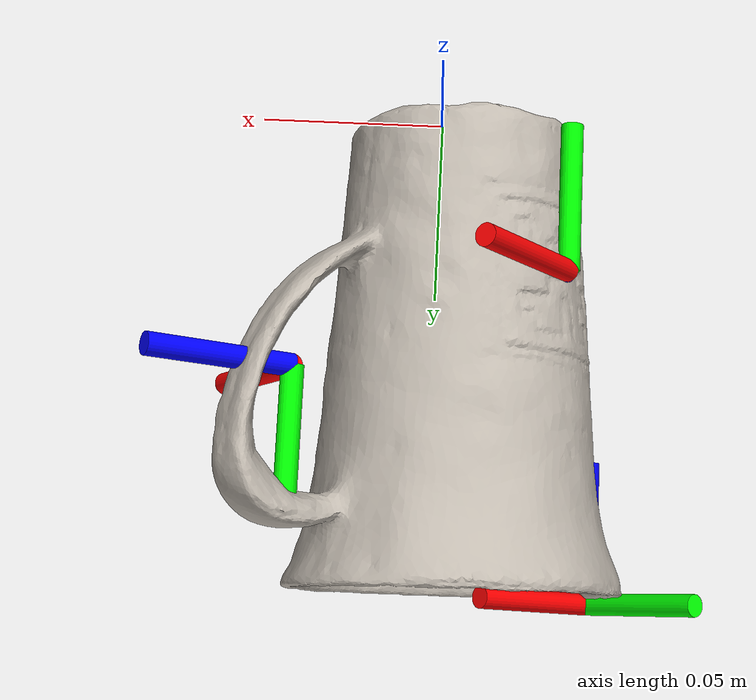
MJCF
<mujoco model="mug_with_tag">
  <compiler autolimits="true" angle="radian"/>
  <default>
    <default class="visual">
      <geom group="2" type="mesh" contype="0" conaffinity="0"/>
    </default>
    <default class="collision">
      <geom group="3" type="mesh"/>
    </default>
  </default>
  <asset>
    <texture type="2d" name="baked_mesh_ac1cdfa2_tex0" file="baked_mesh_ac1cdfa2_tex0.png"/>
    <material name="Texture" texture="baked_mesh_ac1cdfa2_tex0" specular="0.5" shininess="0.5"/>
    <mesh file="mug_with_tag.obj"/>
    <mesh file="mug_with_tag_collision_0.obj"/>
    <mesh file="mug_with_tag_collision_1.obj"/>
    <mesh file="mug_with_tag_collision_2.obj"/>
    <mesh file="mug_with_tag_collision_3.obj"/>
    <mesh file="mug_with_tag_collision_4.obj"/>
    <mesh file="mug_with_tag_collision_5.obj"/>
    <mesh file="mug_with_tag_collision_6.obj"/>
    <mesh file="mug_with_tag_collision_7.obj"/>
    <mesh file="mug_with_tag_collision_8.obj"/>
    <mesh file="mug_with_tag_collision_9.obj"/>
    <mesh file="mug_with_tag_collision_10.obj"/>
    <mesh file="mug_with_tag_collision_11.obj"/>
    <mesh file="mug_with_tag_collision_12.obj"/>
    <mesh file="mug_with_tag_collision_13.obj"/>
    <mesh file="mug_with_tag_collision_14.obj"/>
    <mesh file="mug_with_tag_collision_15.obj"/>
    <mesh file="mug_with_tag_collision_16.obj"/>
    <mesh file="mug_with_tag_collision_17.obj"/>
    <mesh file="mug_with_tag_collision_18.obj"/>
    <mesh file="mug_with_tag_collision_19.obj"/>
    <mesh file="mug_with_tag_collision_20.obj"/>
    <mesh file="mug_with_tag_collision_21.obj"/>
    <mesh file="mug_with_tag_collision_22.obj"/>
    <mesh file="mug_with_tag_collision_23.obj"/>
    <mesh file="mug_with_tag_collision_24.obj"/>
    <mesh file="mug_with_tag_collision_25.obj"/>
    <mesh file="mug_with_tag_collision_26.obj"/>
    <mesh file="mug_with_tag_collision_27.obj"/>
    <mesh file="mug_with_tag_collision_28.obj"/>
    <mesh file="mug_with_tag_collision_29.obj"/>
    <mesh file="mug_with_tag_collision_30.obj"/>
    <mesh file="mug_with_tag_collision_31.obj"/>
    <mesh file="mug_with_tag_collision_32.obj"/>
    <mesh file="mug_with_tag_collision_33.obj"/>
    <mesh file="mug_with_tag_collision_34.obj"/>
    <mesh file="mug_with_tag_collision_35.obj"/>
    <mesh file="mug_with_tag_collision_36.obj"/>
    <mesh file="mug_with_tag_collision_37.obj"/>
    <mesh file="mug_with_tag_collision_38.obj"/>
    <mesh file="mug_with_tag_collision_39.obj"/>
    <mesh file="mug_with_tag_collision_40.obj"/>
    <mesh file="mug_with_tag_collision_41.obj"/>
    <mesh file="mug_with_tag_collision_42.obj"/>
    <mesh file="mug_with_tag_collision_43.obj"/>
    <mesh file="mug_with_tag_collision_44.obj"/>
    <mesh file="mug_with_tag_collision_45.obj"/>
    <mesh file="mug_with_tag_collision_46.obj"/>
    <mesh file="mug_with_tag_collision_47.obj"/>
    <mesh file="mug_with_tag_collision_48.obj"/>
    <mesh file="mug_with_tag_collision_49.obj"/>
    <mesh file="mug_with_tag_collision_50.obj"/>
    <mesh file="mug_with_tag_collision_51.obj"/>
    <mesh file="mug_with_tag_collision_52.obj"/>
    <mesh file="mug_with_tag_collision_53.obj"/>
    <mesh file="mug_with_tag_collision_54.obj"/>
    <mesh file="mug_with_tag_collision_55.obj"/>
    <mesh file="mug_with_tag_collision_56.obj"/>
  </asset>
  <worldbody>
    <body name="mug_with_tag">
      <geom material="Texture" mesh="mug_with_tag" class="visual"/>
      <geom mesh="mug_with_tag_collision_0" rgba="0.4449763013460871 0.6888993739208505 0.842312816770509 1" class="collision"/>
      <geom mesh="mug_with_tag_collision_1" rgba="0.8147493058793346 0.6084578768921085 0.8543772203850549 1" class="collision"/>
      <geom mesh="mug_with_tag_collision_2" rgba="0.1675940875347307 0.7848622610207757 0.9286685800605973 1" class="collision"/>
      <geom mesh="mug_with_tag_collision_3" rgba="0.13423541628254165 0.22923692811376772 0.014591379438338437 1" class="collision"/>
      <geom mesh="mug_with_tag_collision_4" rgba="0.6353344231907213 0.27479794843898186 0.039764699730835074 1" class="collision"/>
      <geom mesh="mug_with_tag_collision_5" rgba="0.10301458540068387 0.2336917539684228 0.31194883868037426 1" class="collision"/>
      <geom mesh="mug_with_tag_collision_6" rgba="0.09387732105586022 0.7640093510755676 0.21579413509359613 1" class="collision"/>
      <geom mesh="mug_with_tag_collision_7" rgba="0.331169343898133 0.9088527297862445 0.2527124053053664 1" class="collision"/>
      <geom mesh="mug_with_tag_collision_8" rgba="0.8230255634089231 0.665419127566091 0.9049474863002644 1" class="collision"/>
      <geom mesh="mug_with_tag_collision_9" rgba="0.628419772055669 0.4135994615820847 0.3486868587758635 1" class="collision"/>
      <geom mesh="mug_with_tag_collision_10" rgba="0.5565690060642147 0.836640399850195 0.193171339429568 1" class="collision"/>
      <geom mesh="mug_with_tag_collision_11" rgba="0.22859979537369546 0.8901449969094043 0.13009918795549746 1" class="collision"/>
      <geom mesh="mug_with_tag_collision_12" rgba="0.08769334109209992 0.28344129774761473 0.6670723495590603 1" class="collision"/>
      <geom mesh="mug_with_tag_collision_13" rgba="0.8999909378754342 0.8504661129087295 0.8470081707796417 1" class="collision"/>
      <geom mesh="mug_with_tag_collision_14" rgba="0.2031211821110699 0.07236391364256822 0.4808890210737693 1" class="collision"/>
      <geom mesh="mug_with_tag_collision_15" rgba="0.18980102203473537 0.6621971360169723 0.7338349112815108 1" class="collision"/>
      <geom mesh="mug_with_tag_collision_16" rgba="0.2762072417847199 0.673016154795776 0.9595671713900087 1" class="collision"/>
      <geom mesh="mug_with_tag_collision_17" rgba="0.0725937479594645 0.7044349191581244 0.43488126670744187 1" class="collision"/>
      <geom mesh="mug_with_tag_collision_18" rgba="0.7616044578130823 0.9721595772204986 0.6996468793821229 1" class="collision"/>
      <geom mesh="mug_with_tag_collision_19" rgba="0.03212361465610569 0.5521414767273927 0.09832834508807486 1" class="collision"/>
      <geom mesh="mug_with_tag_collision_20" rgba="0.21960561999498995 0.3775137588098346 0.9268022852016629 1" class="collision"/>
      <geom mesh="mug_with_tag_collision_21" rgba="0.8757405969109455 0.32699217493786115 0.9017117630965703 1" class="collision"/>
      <geom mesh="mug_with_tag_collision_22" rgba="0.3240007684335865 0.2985474598596862 0.5952000922192967 1" class="collision"/>
      <geom mesh="mug_with_tag_collision_23" rgba="0.18466946702949216 0.9142227726129625 0.8797894232736918 1" class="collision"/>
      <geom mesh="mug_with_tag_collision_24" rgba="0.9090037635306101 0.9910376076892797 0.8359312172711201 1" class="collision"/>
      <geom mesh="mug_with_tag_collision_25" rgba="0.6250657133971474 0.9426848238786777 0.24739077118149133 1" class="collision"/>
      <geom mesh="mug_with_tag_collision_26" rgba="0.20166016383044438 0.7723744865043767 0.5979763326360172 1" class="collision"/>
      <geom mesh="mug_with_tag_collision_27" rgba="0.41916810315789876 0.7560807542806387 0.1154380499312253 1" class="collision"/>
      <geom mesh="mug_with_tag_collision_28" rgba="0.3131421587830313 0.1793811738758182 0.8616611765908508 1" class="collision"/>
      <geom mesh="mug_with_tag_collision_29" rgba="0.8881697449528524 0.6860595757624801 0.840237822994106 1" class="collision"/>
      <geom mesh="mug_with_tag_collision_30" rgba="0.05077399669707605 0.6770448831789695 0.967425548843384 1" class="collision"/>
      <geom mesh="mug_with_tag_collision_31" rgba="0.3398413259183435 0.8340069245568463 0.774367291124885 1" class="collision"/>
      <geom mesh="mug_with_tag_collision_32" rgba="0.447439421148511 0.8011548700448691 0.4301335176437123 1" class="collision"/>
      <geom mesh="mug_with_tag_collision_33" rgba="0.7824856738214869 0.6107769601330952 0.9831616657348266 1" class="collision"/>
      <geom mesh="mug_with_tag_collision_34" rgba="0.1881973948535013 0.6024014329337692 0.9116232983087269 1" class="collision"/>
      <geom mesh="mug_with_tag_collision_35" rgba="0.5373167870392417 0.34561353664237837 0.5511674420397981 1" class="collision"/>
      <geom mesh="mug_with_tag_collision_36" rgba="0.7752665806755705 0.42313091922455204 0.9975858617183 1" class="collision"/>
      <geom mesh="mug_with_tag_collision_37" rgba="0.016263003956870192 0.9164464801428488 0.6629181985426985 1" class="collision"/>
      <geom mesh="mug_with_tag_collision_38" rgba="0.17127375663321875 0.8043413635364332 0.726017780678326 1" class="collision"/>
      <geom mesh="mug_with_tag_collision_39" rgba="0.87881079272273 0.17979930614777928 0.8663326205508906 1" class="collision"/>
      <geom mesh="mug_with_tag_collision_40" rgba="0.6217169125971052 0.37990498719545707 0.5282573022711567 1" class="collision"/>
      <geom mesh="mug_with_tag_collision_41" rgba="0.8885027381985625 0.5090129381739181 0.9180896897256642 1" class="collision"/>
      <geom mesh="mug_with_tag_collision_42" rgba="0.7459976744691059 0.5112348612465708 0.46981444242550807 1" class="collision"/>
      <geom mesh="mug_with_tag_collision_43" rgba="0.42750543715536016 0.503306213179963 0.43517029171643085 1" class="collision"/>
      <geom mesh="mug_with_tag_collision_44" rgba="0.5976055247252084 0.08928793652406697 0.03321205878019762 1" class="collision"/>
      <geom mesh="mug_with_tag_collision_45" rgba="0.1325482609490365 0.9942194100323647 0.0839239177433222 1" class="collision"/>
      <geom mesh="mug_with_tag_collision_46" rgba="0.8500313276583958 0.8563661793692057 0.9840921310554419 1" class="collision"/>
      <geom mesh="mug_with_tag_collision_47" rgba="0.8517253173803918 0.5931724810893567 0.29268415457896046 1" class="collision"/>
      <geom mesh="mug_with_tag_collision_48" rgba="0.970938464753422 0.28231578033818416 0.009456761339682318 1" class="collision"/>
      <geom mesh="mug_with_tag_collision_49" rgba="0.1350709885831065 0.21082901490097572 0.8631583305812426 1" class="collision"/>
      <geom mesh="mug_with_tag_collision_50" rgba="0.017498447900307967 0.3710052466518662 0.18755156335217005 1" class="collision"/>
      <geom mesh="mug_with_tag_collision_51" rgba="0.8197504187636386 0.5995125735709413 0.4463579144961419 1" class="collision"/>
      <geom mesh="mug_with_tag_collision_52" rgba="0.020545121556969193 0.953494550120737 0.5997548252088507 1" class="collision"/>
      <geom mesh="mug_with_tag_collision_53" rgba="0.22288149090093612 0.1683547709395572 0.7046541663805094 1" class="collision"/>
      <geom mesh="mug_with_tag_collision_54" rgba="0.8192539418736148 0.8666459776310642 0.5885012275001282 1" class="collision"/>
      <geom mesh="mug_with_tag_collision_55" rgba="0.9042828772533906 0.5966600291843579 0.37964373984891997 1" class="collision"/>
      <geom mesh="mug_with_tag_collision_56" rgba="0.2778761256195418 0.5828528581754764 0.6943830236183886 1" class="collision"/>
    </body>

    <body name="tag" pos="-0.035 0.045 0.02" euler="0 2.1817 3.1416">
      <!-- geoms for x,y,z axis as cylinder, with RGB color -->
      <geom type="cylinder" size="0.003 0.02" pos="0.02 0 0" rgba="1 0 0 1" material="Texture" euler="0 1.5708 0" class="visual"/>
      <geom type="cylinder" size="0.003 0.02" pos="0 0.02 0" rgba="0 1 0 1" material="Texture" euler="1.5708 0 0" class="visual"/>
      <geom type="cylinder" size="0.003 0.02" pos="0 0 0.02" rgba="0 0 1 1" material="Texture" euler="0 0 0" class="visual"/>
    </body>

    <body name="grasp" pos="-0.046 0.13 -0.026" euler="1.5708 0 0.6981">
      <!-- geoms for x,y,z axis as cylinder, with RGB color -->
      <geom type="cylinder" size="0.003 0.02" pos="0.02 0 0" rgba="1 0 0 1" material="Texture" euler="0 1.5708 0" class="visual"/>
      <geom type="cylinder" size="0.003 0.02" pos="0 0.02 0" rgba="0 1 0 1" material="Texture" euler="1.5708 0 0" class="visual"/>
      <geom type="cylinder" size="0.003 0.02" pos="0 0 0.02" rgba="0 0 1 1" material="Texture" euler="0 0 0" class="visual"/>
    </body>

    <body name="handle_center" pos="0.035 0.075 0.03" euler="0 1.0 0">
      <!-- geoms for x,y,z axis as cylinder, with RGB color -->
      <geom type="cylinder" size="0.003 0.02" pos="0.02 0 0" rgba="1 0 0 1" material="Texture" euler="0 1.5708 0" class="visual"/>
      <geom type="cylinder" size="0.003 0.02" pos="0 0.02 0" rgba="0 1 0 1" material="Texture" euler="1.5708 0 0" class="visual"/>
      <geom type="cylinder" size="0.003 0.02" pos="0 0 0.02" rgba="0 0 1 1" material="Texture" euler="0 0 0" class="visual"/>
    </body>

  </worldbody>
</mujoco>
